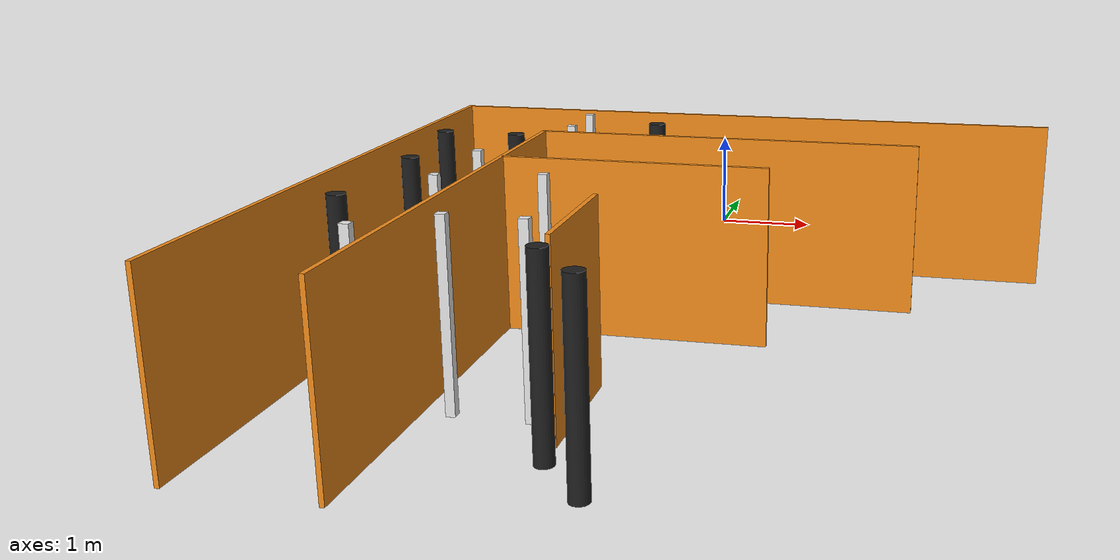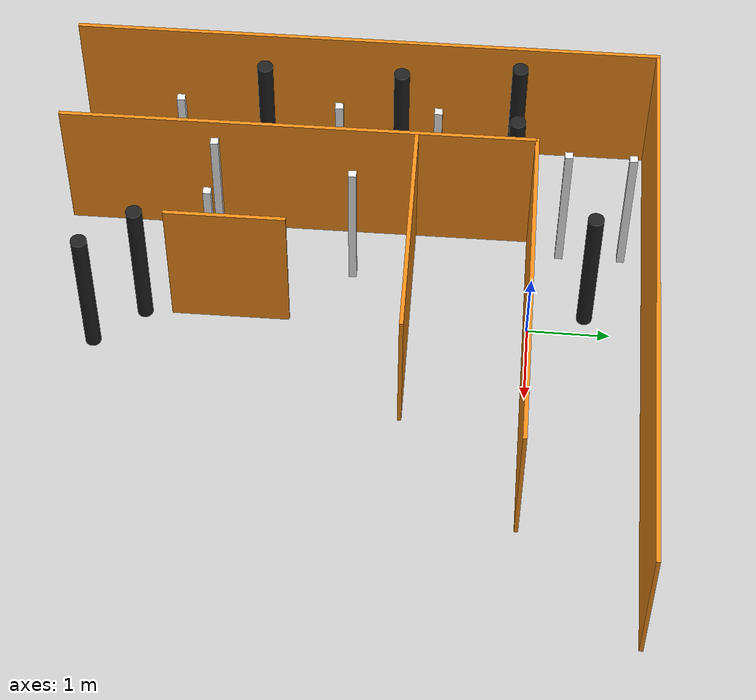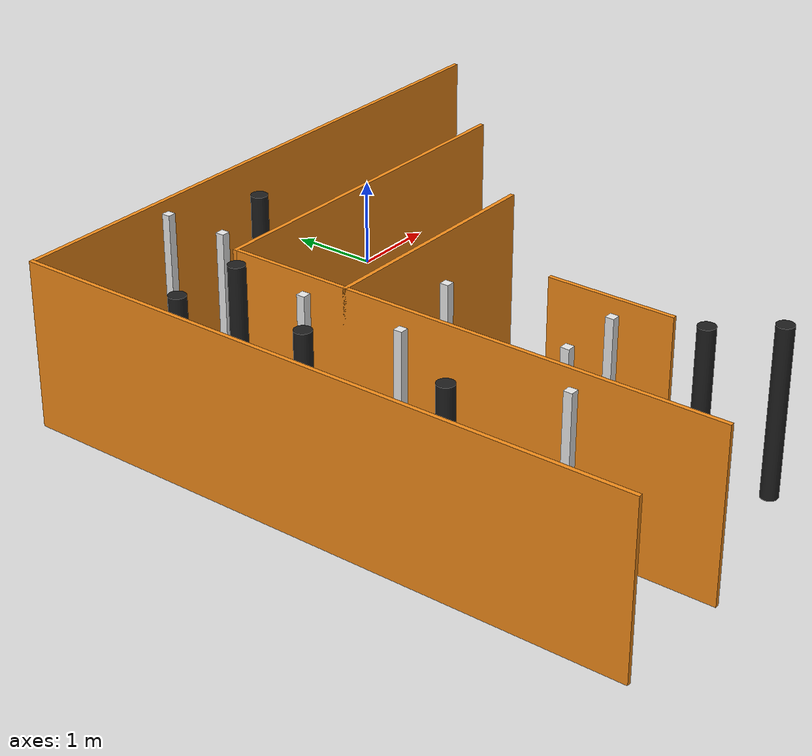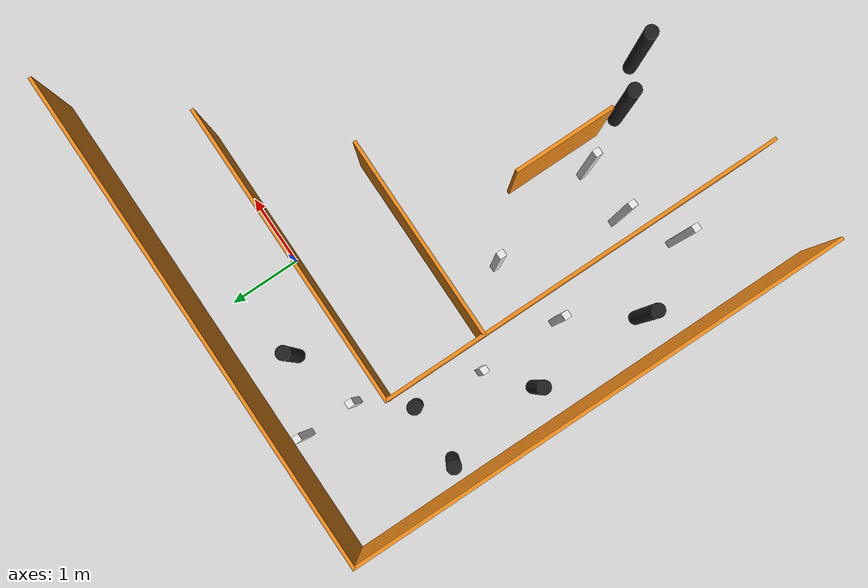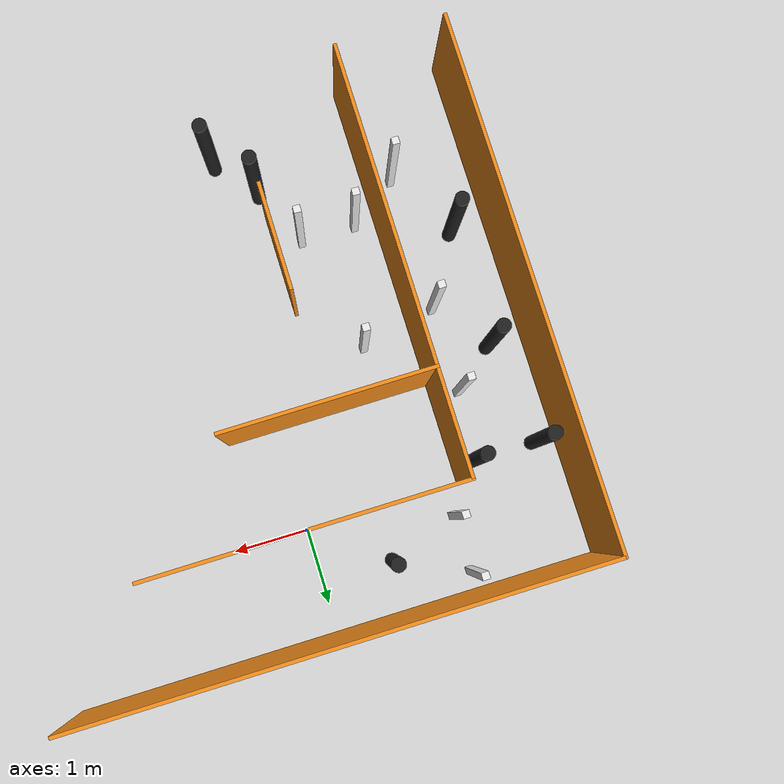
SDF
<sdf version="1.7">
 <model name="pesu_hackathon_arena_1">
  <link name="link_0">
   <visual name="visual">
    <geometry><box><size>4.5 0.05 2</size></box></geometry>
    <material>
     <lighting>1</lighting>
     <script><uri>file://media/materials/scripts/gazebo.material</uri><name>Gazebo/Orange</name></script>
     <shader type="pixel"/>
    </material>
   </visual>
   <collision name="collision">
    <geometry><box><size>4.5 0.05 2</size></box></geometry>
    <surface>
     <friction>
      <ode><mu>1</mu><mu2>1</mu2><fdir1>0 0 0</fdir1><slip1>0</slip1><slip2>0</slip2></ode>
      <torsional>
       <coefficient>1</coefficient>
       <patch_radius>0</patch_radius>
       <surface_radius>0</surface_radius>
       <use_patch_radius>1</use_patch_radius>
       <ode><slip>0</slip></ode>
      </torsional>
     </friction>
     <bounce><restitution_coefficient>0</restitution_coefficient><threshold>1e+06</threshold></bounce>
     <contact>
      <collide_without_contact>0</collide_without_contact>
      <collide_without_contact_bitmask>1</collide_without_contact_bitmask>
      <collide_bitmask>1</collide_bitmask>
      <ode>
       <soft_cfm>0</soft_cfm>
       <soft_erp>0.2</soft_erp>
       <kp>1e+13</kp>
       <kd>1</kd>
       <max_vel>0.01</max_vel>
       <min_depth>0</min_depth>
      </ode>
      <bullet>
       <split_impulse>1</split_impulse>
       <split_impulse_penetration_threshold>-0.01</split_impulse_penetration_threshold>
       <soft_cfm>0</soft_cfm>
       <soft_erp>0.2</soft_erp>
       <kp>1e+13</kp>
       <kd>1</kd>
      </bullet>
     </contact>
    </surface>
   </collision>
  </link>
  <link name="link_1">
   <pose>0 1.5 0 0 -0 0</pose>
   <visual name="visual">
    <geometry><box><size>7.5 0.05 2</size></box></geometry>
    <material>
     <lighting>1</lighting>
     <script><uri>file://media/materials/scripts/gazebo.material</uri><name>Gazebo/Orange</name></script>
     <shader type="pixel"/>
    </material>
   </visual>
   <collision name="collision">
    <geometry><box><size>7.5 0.05 2</size></box></geometry>
    <surface>
     <friction>
      <ode><mu>1</mu><mu2>1</mu2><fdir1>0 0 0</fdir1><slip1>0</slip1><slip2>0</slip2></ode>
      <torsional>
       <coefficient>1</coefficient>
       <patch_radius>0</patch_radius>
       <surface_radius>0</surface_radius>
       <use_patch_radius>1</use_patch_radius>
       <ode><slip>0</slip></ode>
      </torsional>
     </friction>
     <bounce><restitution_coefficient>0</restitution_coefficient><threshold>1e+06</threshold></bounce>
     <contact>
      <collide_without_contact>0</collide_without_contact>
      <collide_without_contact_bitmask>1</collide_without_contact_bitmask>
      <collide_bitmask>1</collide_bitmask>
      <ode>
       <soft_cfm>0</soft_cfm>
       <soft_erp>0.2</soft_erp>
       <kp>1e+13</kp>
       <kd>1</kd>
       <max_vel>0.01</max_vel>
       <min_depth>0</min_depth>
      </ode>
      <bullet>
       <split_impulse>1</split_impulse>
       <split_impulse_penetration_threshold>-0.01</split_impulse_penetration_threshold>
       <soft_cfm>0</soft_cfm>
       <soft_erp>0.2</soft_erp>
       <kp>1e+13</kp>
       <kd>1</kd>
      </bullet>
     </contact>
    </surface>
   </collision>
  </link>
  <link name="link_2">
   <pose>-2.225 -3 0 0 -0 0</pose>
   <visual name="visual">
    <geometry><box><size>0.05 6 2</size></box></geometry>
    <material>
     <lighting>1</lighting>
     <script><uri>file://media/materials/scripts/gazebo.material</uri><name>Gazebo/Orange</name></script>
     <shader type="pixel"/>
    </material>
   </visual>
   <collision name="collision">
    <geometry><box><size>0.05 6 2</size></box></geometry>
    <surface>
     <friction>
      <ode><mu>1</mu><mu2>1</mu2><fdir1>0 0 0</fdir1><slip1>0</slip1><slip2>0</slip2></ode>
      <torsional>
       <coefficient>1</coefficient>
       <patch_radius>0</patch_radius>
       <surface_radius>0</surface_radius>
       <use_patch_radius>1</use_patch_radius>
       <ode><slip>0</slip></ode>
      </torsional>
     </friction>
     <bounce><restitution_coefficient>0</restitution_coefficient><threshold>1e+06</threshold></bounce>
     <contact>
      <collide_without_contact>0</collide_without_contact>
      <collide_without_contact_bitmask>1</collide_without_contact_bitmask>
      <collide_bitmask>1</collide_bitmask>
      <ode>
       <soft_cfm>0</soft_cfm>
       <soft_erp>0.2</soft_erp>
       <kp>1e+13</kp>
       <kd>1</kd>
       <max_vel>0.01</max_vel>
       <min_depth>0</min_depth>
      </ode>
      <bullet>
       <split_impulse>1</split_impulse>
       <split_impulse_penetration_threshold>-0.01</split_impulse_penetration_threshold>
       <soft_cfm>0</soft_cfm>
       <soft_erp>0.2</soft_erp>
       <kp>1e+13</kp>
       <kd>1</kd>
      </bullet>
     </contact>
    </surface>
   </collision>
  </link>
  <link name="link_4">
   <pose>-3.75 -2.225 0 0 -0 0</pose>
   <visual name="visual">
    <geometry><box><size>0.05 7.5 2</size></box></geometry>
    <material>
     <lighting>1</lighting>
     <script><uri>file://media/materials/scripts/gazebo.material</uri><name>Gazebo/Orange</name></script>
     <shader type="pixel"/>
    </material>
   </visual>
   <collision name="collision">
    <geometry><box><size>0.05 7.5 2</size></box></geometry>
    <surface>
     <friction>
      <ode><mu>1</mu><mu2>1</mu2><fdir1>0 0 0</fdir1><slip1>0</slip1><slip2>0</slip2></ode>
      <torsional>
       <coefficient>1</coefficient>
       <patch_radius>0</patch_radius>
       <surface_radius>0</surface_radius>
       <use_patch_radius>1</use_patch_radius>
       <ode><slip>0</slip></ode>
      </torsional>
     </friction>
     <bounce><restitution_coefficient>0</restitution_coefficient><threshold>1e+06</threshold></bounce>
     <contact>
      <collide_without_contact>0</collide_without_contact>
      <collide_without_contact_bitmask>1</collide_without_contact_bitmask>
      <collide_bitmask>1</collide_bitmask>
      <ode>
       <soft_cfm>0</soft_cfm>
       <soft_erp>0.2</soft_erp>
       <kp>1e+13</kp>
       <kd>1</kd>
       <max_vel>0.01</max_vel>
       <min_depth>0</min_depth>
      </ode>
      <bullet>
       <split_impulse>1</split_impulse>
       <split_impulse_penetration_threshold>-0.01</split_impulse_penetration_threshold>
       <soft_cfm>0</soft_cfm>
       <soft_erp>0.2</soft_erp>
       <kp>1e+13</kp>
       <kd>1</kd>
      </bullet>
     </contact>
    </surface>
   </collision>
  </link>
  <link name="link_7">
   <pose>-0.75 -1.5 0 0 -0 0</pose>
   <visual name="visual">
    <geometry><box><size>3 0.05 2</size></box></geometry>
    <material>
     <lighting>1</lighting>
     <script><uri>file://media/materials/scripts/gazebo.material</uri><name>Gazebo/Orange</name></script>
     <shader type="pixel"/>
    </material>
   </visual>
   <collision name="collision">
    <geometry><box><size>3 0.05 2</size></box></geometry>
    <surface>
     <friction>
      <ode><mu>1</mu><mu2>1</mu2><fdir1>0 0 0</fdir1><slip1>0</slip1><slip2>0</slip2></ode>
      <torsional>
       <coefficient>1</coefficient>
       <patch_radius>0</patch_radius>
       <surface_radius>0</surface_radius>
       <use_patch_radius>1</use_patch_radius>
       <ode><slip>0</slip></ode>
      </torsional>
     </friction>
     <bounce><restitution_coefficient>0</restitution_coefficient><threshold>1e+06</threshold></bounce>
     <contact>
      <collide_without_contact>0</collide_without_contact>
      <collide_without_contact_bitmask>1</collide_without_contact_bitmask>
      <collide_bitmask>1</collide_bitmask>
      <ode>
       <soft_cfm>0</soft_cfm>
       <soft_erp>0.2</soft_erp>
       <kp>1e+13</kp>
       <kd>1</kd>
       <max_vel>0.01</max_vel>
       <min_depth>0</min_depth>
      </ode>
      <bullet>
       <split_impulse>1</split_impulse>
       <split_impulse_penetration_threshold>-0.01</split_impulse_penetration_threshold>
       <soft_cfm>0</soft_cfm>
       <soft_erp>0.2</soft_erp>
       <kp>1e+13</kp>
       <kd>1</kd>
      </bullet>
     </contact>
    </surface>
   </collision>
  </link>
  <link name="link_10">
   <pose>-0.725 -3.75 0 0 -0 0</pose>
   <visual name="visual">
    <geometry><box><size>0.05 1.5 2</size></box></geometry>
    <material>
     <lighting>1</lighting>
     <script><uri>file://media/materials/scripts/gazebo.material</uri><name>Gazebo/Orange</name></script>
     <shader type="pixel"/>
    </material>
   </visual>
   <collision name="collision">
    <geometry><box><size>0.05 1.5 2</size></box></geometry>
    <surface>
     <friction>
      <ode><mu>1</mu><mu2>1</mu2><fdir1>0 0 0</fdir1><slip1>0</slip1><slip2>0</slip2></ode>
      <torsional>
       <coefficient>1</coefficient>
       <patch_radius>0</patch_radius>
       <surface_radius>0</surface_radius>
       <use_patch_radius>1</use_patch_radius>
       <ode><slip>0</slip></ode>
      </torsional>
     </friction>
     <bounce><restitution_coefficient>0</restitution_coefficient><threshold>1e+06</threshold></bounce>
     <contact>
      <collide_without_contact>0</collide_without_contact>
      <collide_without_contact_bitmask>1</collide_without_contact_bitmask>
      <collide_bitmask>1</collide_bitmask>
      <ode>
       <soft_cfm>0</soft_cfm>
       <soft_erp>0.2</soft_erp>
       <kp>1e+13</kp>
       <kd>1</kd>
       <max_vel>0.01</max_vel>
       <min_depth>0</min_depth>
      </ode>
      <bullet>
       <split_impulse>1</split_impulse>
       <split_impulse_penetration_threshold>-0.01</split_impulse_penetration_threshold>
       <soft_cfm>0</soft_cfm>
       <soft_erp>0.2</soft_erp>
       <kp>1e+13</kp>
       <kd>1</kd>
      </bullet>
     </contact>
    </surface>
   </collision>
  </link>
  <link name="obstacle_2">
   <pose>-1.5 -2.25 0 0 -0 0</pose>
   <visual name="visual">
    <geometry><box><size>0.1 0.1 2</size></box></geometry>
    <material>
     <lighting>1</lighting>
     <script><uri>file://media/materials/scripts/gazebo.material</uri><name>Gazebo/White</name></script>
     <shader type="pixel"/>
    </material>
   </visual>
   <collision name="collision">
    <geometry><box><size>0.1 0.1 2</size></box></geometry>
    <surface>
     <friction>
      <ode><mu>1</mu><mu2>1</mu2><fdir1>0 0 0</fdir1><slip1>0</slip1><slip2>0</slip2></ode>
      <torsional>
       <coefficient>1</coefficient>
       <patch_radius>0</patch_radius>
       <surface_radius>0</surface_radius>
       <use_patch_radius>1</use_patch_radius>
       <ode><slip>0</slip></ode>
      </torsional>
     </friction>
     <bounce><restitution_coefficient>0</restitution_coefficient><threshold>1e+06</threshold></bounce>
     <contact>
      <collide_without_contact>0</collide_without_contact>
      <collide_without_contact_bitmask>1</collide_without_contact_bitmask>
      <collide_bitmask>1</collide_bitmask>
      <ode>
       <soft_cfm>0</soft_cfm>
       <soft_erp>0.2</soft_erp>
       <kp>1e+13</kp>
       <kd>1</kd>
       <max_vel>0.01</max_vel>
       <min_depth>0</min_depth>
      </ode>
      <bullet>
       <split_impulse>1</split_impulse>
       <split_impulse_penetration_threshold>-0.01</split_impulse_penetration_threshold>
       <soft_cfm>0</soft_cfm>
       <soft_erp>0.2</soft_erp>
       <kp>1e+13</kp>
       <kd>1</kd>
      </bullet>
     </contact>
    </surface>
   </collision>
  </link>
  <link name="obstacle_3">
   <pose>-1.1 -4 0 0 -0 0</pose>
   <visual name="visual">
    <geometry><box><size>0.1 0.1 2</size></box></geometry>
    <material>
     <lighting>1</lighting>
     <script><uri>file://media/materials/scripts/gazebo.material</uri><name>Gazebo/White</name></script>
     <shader type="pixel"/>
    </material>
   </visual>
   <collision name="collision">
    <geometry><box><size>0.1 0.1 2</size></box></geometry>
    <surface>
     <friction>
      <ode><mu>1</mu><mu2>1</mu2><fdir1>0 0 0</fdir1><slip1>0</slip1><slip2>0</slip2></ode>
      <torsional>
       <coefficient>1</coefficient>
       <patch_radius>0</patch_radius>
       <surface_radius>0</surface_radius>
       <use_patch_radius>1</use_patch_radius>
       <ode><slip>0</slip></ode>
      </torsional>
     </friction>
     <bounce><restitution_coefficient>0</restitution_coefficient><threshold>1e+06</threshold></bounce>
     <contact>
      <collide_without_contact>0</collide_without_contact>
      <collide_without_contact_bitmask>1</collide_without_contact_bitmask>
      <collide_bitmask>1</collide_bitmask>
      <ode>
       <soft_cfm>0</soft_cfm>
       <soft_erp>0.2</soft_erp>
       <kp>1e+13</kp>
       <kd>1</kd>
       <max_vel>0.01</max_vel>
       <min_depth>0</min_depth>
      </ode>
      <bullet>
       <split_impulse>1</split_impulse>
       <split_impulse_penetration_threshold>-0.01</split_impulse_penetration_threshold>
       <soft_cfm>0</soft_cfm>
       <soft_erp>0.2</soft_erp>
       <kp>1e+13</kp>
       <kd>1</kd>
      </bullet>
     </contact>
    </surface>
   </collision>
  </link>
  <link name="obstacle_4">
   <pose>-1.9 -4 0 0 -0 0</pose>
   <visual name="visual">
    <geometry><box><size>0.1 0.1 2</size></box></geometry>
    <material>
     <lighting>1</lighting>
     <script><uri>file://media/materials/scripts/gazebo.material</uri><name>Gazebo/White</name></script>
     <shader type="pixel"/>
    </material>
   </visual>
   <collision name="collision">
    <geometry><box><size>0.1 0.1 2</size></box></geometry>
    <surface>
     <friction>
      <ode><mu>1</mu><mu2>1</mu2><fdir1>0 0 0</fdir1><slip1>0</slip1><slip2>0</slip2></ode>
      <torsional>
       <coefficient>1</coefficient>
       <patch_radius>0</patch_radius>
       <surface_radius>0</surface_radius>
       <use_patch_radius>1</use_patch_radius>
       <ode><slip>0</slip></ode>
      </torsional>
     </friction>
     <bounce><restitution_coefficient>0</restitution_coefficient><threshold>1e+06</threshold></bounce>
     <contact>
      <collide_without_contact>0</collide_without_contact>
      <collide_without_contact_bitmask>1</collide_without_contact_bitmask>
      <collide_bitmask>1</collide_bitmask>
      <ode>
       <soft_cfm>0</soft_cfm>
       <soft_erp>0.2</soft_erp>
       <kp>1e+13</kp>
       <kd>1</kd>
       <max_vel>0.01</max_vel>
       <min_depth>0</min_depth>
      </ode>
      <bullet>
       <split_impulse>1</split_impulse>
       <split_impulse_penetration_threshold>-0.01</split_impulse_penetration_threshold>
       <soft_cfm>0</soft_cfm>
       <soft_erp>0.2</soft_erp>
       <kp>1e+13</kp>
       <kd>1</kd>
      </bullet>
     </contact>
    </surface>
   </collision>
  </link>
  <link name="obstacle_5">
   <pose>-0.7 -4.85 0 0 -0 0</pose>
   <visual name="visual">
    <geometry><cylinder><radius>0.1</radius><length>2</length></cylinder></geometry>
    <material>
     <lighting>1</lighting>
     <script><uri>file://media/materials/scripts/gazebo.material</uri><name>Gazebo/Black</name></script>
     <shader type="pixel"/>
    </material>
   </visual>
   <collision name="collision">
    <geometry><cylinder><radius>0.1</radius><length>2</length></cylinder></geometry>
    <surface>
     <friction>
      <ode><mu>1</mu><mu2>1</mu2><fdir1>0 0 0</fdir1><slip1>0</slip1><slip2>0</slip2></ode>
      <torsional>
       <coefficient>1</coefficient>
       <patch_radius>0</patch_radius>
       <surface_radius>0</surface_radius>
       <use_patch_radius>1</use_patch_radius>
       <ode><slip>0</slip></ode>
      </torsional>
     </friction>
     <bounce><restitution_coefficient>0</restitution_coefficient><threshold>1e+06</threshold></bounce>
     <contact>
      <collide_without_contact>0</collide_without_contact>
      <collide_without_contact_bitmask>1</collide_without_contact_bitmask>
      <collide_bitmask>1</collide_bitmask>
      <ode>
       <soft_cfm>0</soft_cfm>
       <soft_erp>0.2</soft_erp>
       <kp>1e+13</kp>
       <kd>1</kd>
       <max_vel>0.01</max_vel>
       <min_depth>0</min_depth>
      </ode>
      <bullet>
       <split_impulse>1</split_impulse>
       <split_impulse_penetration_threshold>-0.01</split_impulse_penetration_threshold>
       <soft_cfm>0</soft_cfm>
       <soft_erp>0.2</soft_erp>
       <kp>1e+13</kp>
       <kd>1</kd>
      </bullet>
     </contact>
    </surface>
   </collision>
  </link>
  <link name="obstacle_6">
   <pose>-0.2 -5.45 0 0 -0 0</pose>
   <visual name="visual">
    <geometry><cylinder><radius>0.1</radius><length>2</length></cylinder></geometry>
    <material>
     <lighting>1</lighting>
     <script><uri>file://media/materials/scripts/gazebo.material</uri><name>Gazebo/Black</name></script>
     <shader type="pixel"/>
    </material>
   </visual>
   <collision name="collision">
    <geometry><cylinder><radius>0.1</radius><length>2</length></cylinder></geometry>
    <surface>
     <friction>
      <ode><mu>1</mu><mu2>1</mu2><fdir1>0 0 0</fdir1><slip1>0</slip1><slip2>0</slip2></ode>
      <torsional>
       <coefficient>1</coefficient>
       <patch_radius>0</patch_radius>
       <surface_radius>0</surface_radius>
       <use_patch_radius>1</use_patch_radius>
       <ode><slip>0</slip></ode>
      </torsional>
     </friction>
     <bounce><restitution_coefficient>0</restitution_coefficient><threshold>1e+06</threshold></bounce>
     <contact>
      <collide_without_contact>0</collide_without_contact>
      <collide_without_contact_bitmask>1</collide_without_contact_bitmask>
      <collide_bitmask>1</collide_bitmask>
      <ode>
       <soft_cfm>0</soft_cfm>
       <soft_erp>0.2</soft_erp>
       <kp>1e+13</kp>
       <kd>1</kd>
       <max_vel>0.01</max_vel>
       <min_depth>0</min_depth>
      </ode>
      <bullet>
       <split_impulse>1</split_impulse>
       <split_impulse_penetration_threshold>-0.01</split_impulse_penetration_threshold>
       <soft_cfm>0</soft_cfm>
       <soft_erp>0.2</soft_erp>
       <kp>1e+13</kp>
       <kd>1</kd>
      </bullet>
     </contact>
    </surface>
   </collision>
  </link>
  <link name="obstacle_20">
   <pose>-1 0.75 0 0 -0 0</pose>
   <visual name="visual">
    <geometry><cylinder><radius>0.1</radius><length>2</length></cylinder></geometry>
    <material>
     <lighting>1</lighting>
     <script><uri>file://media/materials/scripts/gazebo.material</uri><name>Gazebo/Black</name></script>
     <shader type="pixel"/>
    </material>
   </visual>
   <collision name="collision">
    <geometry><cylinder><radius>0.1</radius><length>2</length></cylinder></geometry>
    <surface>
     <friction>
      <ode><mu>1</mu><mu2>1</mu2><fdir1>0 0 0</fdir1><slip1>0</slip1><slip2>0</slip2></ode>
      <torsional>
       <coefficient>1</coefficient>
       <patch_radius>0</patch_radius>
       <surface_radius>0</surface_radius>
       <use_patch_radius>1</use_patch_radius>
       <ode><slip>0</slip></ode>
      </torsional>
     </friction>
     <bounce><restitution_coefficient>0</restitution_coefficient><threshold>1e+06</threshold></bounce>
     <contact>
      <collide_without_contact>0</collide_without_contact>
      <collide_without_contact_bitmask>1</collide_without_contact_bitmask>
      <collide_bitmask>1</collide_bitmask>
      <ode>
       <soft_cfm>0</soft_cfm>
       <soft_erp>0.2</soft_erp>
       <kp>1e+13</kp>
       <kd>1</kd>
       <max_vel>0.01</max_vel>
       <min_depth>0</min_depth>
      </ode>
      <bullet>
       <split_impulse>1</split_impulse>
       <split_impulse_penetration_threshold>-0.01</split_impulse_penetration_threshold>
       <soft_cfm>0</soft_cfm>
       <soft_erp>0.2</soft_erp>
       <kp>1e+13</kp>
       <kd>1</kd>
      </bullet>
     </contact>
    </surface>
   </collision>
  </link>
  <link name="obstacle_21">
   <pose>-2 0.4 0 0 -0 0</pose>
   <visual name="visual">
    <geometry><box><size>0.1 0.1 2</size></box></geometry>
    <material>
     <lighting>1</lighting>
     <script><uri>file://media/materials/scripts/gazebo.material</uri><name>Gazebo/White</name></script>
     <shader type="pixel"/>
    </material>
   </visual>
   <collision name="collision">
    <geometry><box><size>0.1 0.1 2</size></box></geometry>
    <surface>
     <friction>
      <ode><mu>1</mu><mu2>1</mu2><fdir1>0 0 0</fdir1><slip1>0</slip1><slip2>0</slip2></ode>
      <torsional>
       <coefficient>1</coefficient>
       <patch_radius>0</patch_radius>
       <surface_radius>0</surface_radius>
       <use_patch_radius>1</use_patch_radius>
       <ode><slip>0</slip></ode>
      </torsional>
     </friction>
     <bounce><restitution_coefficient>0</restitution_coefficient><threshold>1e+06</threshold></bounce>
     <contact>
      <collide_without_contact>0</collide_without_contact>
      <collide_without_contact_bitmask>1</collide_without_contact_bitmask>
      <collide_bitmask>1</collide_bitmask>
      <ode>
       <soft_cfm>0</soft_cfm>
       <soft_erp>0.2</soft_erp>
       <kp>1e+13</kp>
       <kd>1</kd>
       <max_vel>0.01</max_vel>
       <min_depth>0</min_depth>
      </ode>
      <bullet>
       <split_impulse>1</split_impulse>
       <split_impulse_penetration_threshold>-0.01</split_impulse_penetration_threshold>
       <soft_cfm>0</soft_cfm>
       <soft_erp>0.2</soft_erp>
       <kp>1e+13</kp>
       <kd>1</kd>
      </bullet>
     </contact>
    </surface>
   </collision>
  </link>
  <link name="obstacle_22">
   <pose>-2 1.2 0 0 -0 0</pose>
   <visual name="visual">
    <geometry><box><size>0.1 0.1 2</size></box></geometry>
    <material>
     <lighting>1</lighting>
     <script><uri>file://media/materials/scripts/gazebo.material</uri><name>Gazebo/White</name></script>
     <shader type="pixel"/>
    </material>
   </visual>
   <collision name="collision">
    <geometry><box><size>0.1 0.1 2</size></box></geometry>
    <surface>
     <friction>
      <ode><mu>1</mu><mu2>1</mu2><fdir1>0 0 0</fdir1><slip1>0</slip1><slip2>0</slip2></ode>
      <torsional>
       <coefficient>1</coefficient>
       <patch_radius>0</patch_radius>
       <surface_radius>0</surface_radius>
       <use_patch_radius>1</use_patch_radius>
       <ode><slip>0</slip></ode>
      </torsional>
     </friction>
     <bounce><restitution_coefficient>0</restitution_coefficient><threshold>1e+06</threshold></bounce>
     <contact>
      <collide_without_contact>0</collide_without_contact>
      <collide_without_contact_bitmask>1</collide_without_contact_bitmask>
      <collide_bitmask>1</collide_bitmask>
      <ode>
       <soft_cfm>0</soft_cfm>
       <soft_erp>0.2</soft_erp>
       <kp>1e+13</kp>
       <kd>1</kd>
       <max_vel>0.01</max_vel>
       <min_depth>0</min_depth>
      </ode>
      <bullet>
       <split_impulse>1</split_impulse>
       <split_impulse_penetration_threshold>-0.01</split_impulse_penetration_threshold>
       <soft_cfm>0</soft_cfm>
       <soft_erp>0.2</soft_erp>
       <kp>1e+13</kp>
       <kd>1</kd>
      </bullet>
     </contact>
    </surface>
   </collision>
  </link>
  <link name="obstacle_23">
   <pose>-2.5 -0.25 0 0 -0 0</pose>
   <visual name="visual">
    <geometry><cylinder><radius>0.1</radius><length>2</length></cylinder></geometry>
    <material>
     <lighting>1</lighting>
     <script><uri>file://media/materials/scripts/gazebo.material</uri><name>Gazebo/Black</name></script>
     <shader type="pixel"/>
    </material>
   </visual>
   <collision name="collision">
    <geometry><cylinder><radius>0.1</radius><length>2</length></cylinder></geometry>
    <surface>
     <friction>
      <ode><mu>1</mu><mu2>1</mu2><fdir1>0 0 0</fdir1><slip1>0</slip1><slip2>0</slip2></ode>
      <torsional>
       <coefficient>1</coefficient>
       <patch_radius>0</patch_radius>
       <surface_radius>0</surface_radius>
       <use_patch_radius>1</use_patch_radius>
       <ode><slip>0</slip></ode>
      </torsional>
     </friction>
     <bounce><restitution_coefficient>0</restitution_coefficient><threshold>1e+06</threshold></bounce>
     <contact>
      <collide_without_contact>0</collide_without_contact>
      <collide_without_contact_bitmask>1</collide_without_contact_bitmask>
      <collide_bitmask>1</collide_bitmask>
      <ode>
       <soft_cfm>0</soft_cfm>
       <soft_erp>0.2</soft_erp>
       <kp>1e+13</kp>
       <kd>1</kd>
       <max_vel>0.01</max_vel>
       <min_depth>0</min_depth>
      </ode>
      <bullet>
       <split_impulse>1</split_impulse>
       <split_impulse_penetration_threshold>-0.01</split_impulse_penetration_threshold>
       <soft_cfm>0</soft_cfm>
       <soft_erp>0.2</soft_erp>
       <kp>1e+13</kp>
       <kd>1</kd>
      </bullet>
     </contact>
    </surface>
   </collision>
  </link>
  <link name="obstacle_24">
   <pose>-3.4 -0.25 0 0 -0 0</pose>
   <visual name="visual">
    <geometry><cylinder><radius>0.1</radius><length>2</length></cylinder></geometry>
    <material>
     <lighting>1</lighting>
     <script><uri>file://media/materials/scripts/gazebo.material</uri><name>Gazebo/Black</name></script>
     <shader type="pixel"/>
    </material>
   </visual>
   <collision name="collision">
    <geometry><cylinder><radius>0.1</radius><length>2</length></cylinder></geometry>
    <surface>
     <friction>
      <ode><mu>1</mu><mu2>1</mu2><fdir1>0 0 0</fdir1><slip1>0</slip1><slip2>0</slip2></ode>
      <torsional>
       <coefficient>1</coefficient>
       <patch_radius>0</patch_radius>
       <surface_radius>0</surface_radius>
       <use_patch_radius>1</use_patch_radius>
       <ode><slip>0</slip></ode>
      </torsional>
     </friction>
     <bounce><restitution_coefficient>0</restitution_coefficient><threshold>1e+06</threshold></bounce>
     <contact>
      <collide_without_contact>0</collide_without_contact>
      <collide_without_contact_bitmask>1</collide_without_contact_bitmask>
      <collide_bitmask>1</collide_bitmask>
      <ode>
       <soft_cfm>0</soft_cfm>
       <soft_erp>0.2</soft_erp>
       <kp>1e+13</kp>
       <kd>1</kd>
       <max_vel>0.01</max_vel>
       <min_depth>0</min_depth>
      </ode>
      <bullet>
       <split_impulse>1</split_impulse>
       <split_impulse_penetration_threshold>-0.01</split_impulse_penetration_threshold>
       <soft_cfm>0</soft_cfm>
       <soft_erp>0.2</soft_erp>
       <kp>1e+13</kp>
       <kd>1</kd>
      </bullet>
     </contact>
    </surface>
   </collision>
  </link>
  <link name="obstacle_25">
   <pose>-2.6 -1.25 0 0 -0 0</pose>
   <visual name="visual">
    <geometry><box><size>0.1 0.1 2</size></box></geometry>
    <material>
     <lighting>1</lighting>
     <script><uri>file://media/materials/scripts/gazebo.material</uri><name>Gazebo/White</name></script>
     <shader type="pixel"/>
    </material>
   </visual>
   <collision name="collision">
    <geometry><box><size>0.1 0.1 2</size></box></geometry>
    <surface>
     <friction>
      <ode><mu>1</mu><mu2>1</mu2><fdir1>0 0 0</fdir1><slip1>0</slip1><slip2>0</slip2></ode>
      <torsional>
       <coefficient>1</coefficient>
       <patch_radius>0</patch_radius>
       <surface_radius>0</surface_radius>
       <use_patch_radius>1</use_patch_radius>
       <ode><slip>0</slip></ode>
      </torsional>
     </friction>
     <bounce><restitution_coefficient>0</restitution_coefficient><threshold>1e+06</threshold></bounce>
     <contact>
      <collide_without_contact>0</collide_without_contact>
      <collide_without_contact_bitmask>1</collide_without_contact_bitmask>
      <collide_bitmask>1</collide_bitmask>
      <ode>
       <soft_cfm>0</soft_cfm>
       <soft_erp>0.2</soft_erp>
       <kp>1e+13</kp>
       <kd>1</kd>
       <max_vel>0.01</max_vel>
       <min_depth>0</min_depth>
      </ode>
      <bullet>
       <split_impulse>1</split_impulse>
       <split_impulse_penetration_threshold>-0.01</split_impulse_penetration_threshold>
       <soft_cfm>0</soft_cfm>
       <soft_erp>0.2</soft_erp>
       <kp>1e+13</kp>
       <kd>1</kd>
      </bullet>
     </contact>
    </surface>
   </collision>
  </link>
  <link name="obstacle_26">
   <pose>-3.2 -1.75 0 0 -0 0</pose>
   <visual name="visual">
    <geometry><cylinder><radius>0.1</radius><length>2</length></cylinder></geometry>
    <material>
     <lighting>1</lighting>
     <script><uri>file://media/materials/scripts/gazebo.material</uri><name>Gazebo/Black</name></script>
     <shader type="pixel"/>
    </material>
   </visual>
   <collision name="collision">
    <geometry><cylinder><radius>0.1</radius><length>2</length></cylinder></geometry>
    <surface>
     <friction>
      <ode><mu>1</mu><mu2>1</mu2><fdir1>0 0 0</fdir1><slip1>0</slip1><slip2>0</slip2></ode>
      <torsional>
       <coefficient>1</coefficient>
       <patch_radius>0</patch_radius>
       <surface_radius>0</surface_radius>
       <use_patch_radius>1</use_patch_radius>
       <ode><slip>0</slip></ode>
      </torsional>
     </friction>
     <bounce><restitution_coefficient>0</restitution_coefficient><threshold>1e+06</threshold></bounce>
     <contact>
      <collide_without_contact>0</collide_without_contact>
      <collide_without_contact_bitmask>1</collide_without_contact_bitmask>
      <collide_bitmask>1</collide_bitmask>
      <ode>
       <soft_cfm>0</soft_cfm>
       <soft_erp>0.2</soft_erp>
       <kp>1e+13</kp>
       <kd>1</kd>
       <max_vel>0.01</max_vel>
       <min_depth>0</min_depth>
      </ode>
      <bullet>
       <split_impulse>1</split_impulse>
       <split_impulse_penetration_threshold>-0.01</split_impulse_penetration_threshold>
       <soft_cfm>0</soft_cfm>
       <soft_erp>0.2</soft_erp>
       <kp>1e+13</kp>
       <kd>1</kd>
      </bullet>
     </contact>
    </surface>
   </collision>
  </link>
  <link name="obstacle_27">
   <pose>-2.6 -2.5 0 0 -0 0</pose>
   <visual name="visual">
    <geometry><box><size>0.1 0.1 2</size></box></geometry>
    <material>
     <lighting>1</lighting>
     <script><uri>file://media/materials/scripts/gazebo.material</uri><name>Gazebo/White</name></script>
     <shader type="pixel"/>
    </material>
   </visual>
   <collision name="collision">
    <geometry><box><size>0.1 0.1 2</size></box></geometry>
    <surface>
     <friction>
      <ode><mu>1</mu><mu2>1</mu2><fdir1>0 0 0</fdir1><slip1>0</slip1><slip2>0</slip2></ode>
      <torsional>
       <coefficient>1</coefficient>
       <patch_radius>0</patch_radius>
       <surface_radius>0</surface_radius>
       <use_patch_radius>1</use_patch_radius>
       <ode><slip>0</slip></ode>
      </torsional>
     </friction>
     <bounce><restitution_coefficient>0</restitution_coefficient><threshold>1e+06</threshold></bounce>
     <contact>
      <collide_without_contact>0</collide_without_contact>
      <collide_without_contact_bitmask>1</collide_without_contact_bitmask>
      <collide_bitmask>1</collide_bitmask>
      <ode>
       <soft_cfm>0</soft_cfm>
       <soft_erp>0.2</soft_erp>
       <kp>1e+13</kp>
       <kd>1</kd>
       <max_vel>0.01</max_vel>
       <min_depth>0</min_depth>
      </ode>
      <bullet>
       <split_impulse>1</split_impulse>
       <split_impulse_penetration_threshold>-0.01</split_impulse_penetration_threshold>
       <soft_cfm>0</soft_cfm>
       <soft_erp>0.2</soft_erp>
       <kp>1e+13</kp>
       <kd>1</kd>
      </bullet>
     </contact>
    </surface>
   </collision>
  </link>
  <link name="obstacle_28">
   <pose>-3.2 -3.5 0 0 -0 0</pose>
   <visual name="visual">
    <geometry><cylinder><radius>0.1</radius><length>2</length></cylinder></geometry>
    <material>
     <lighting>1</lighting>
     <script><uri>file://media/materials/scripts/gazebo.material</uri><name>Gazebo/Black</name></script>
     <shader type="pixel"/>
    </material>
   </visual>
   <collision name="collision">
    <geometry><cylinder><radius>0.1</radius><length>2</length></cylinder></geometry>
    <surface>
     <friction>
      <ode><mu>1</mu><mu2>1</mu2><fdir1>0 0 0</fdir1><slip1>0</slip1><slip2>0</slip2></ode>
      <torsional>
       <coefficient>1</coefficient>
       <patch_radius>0</patch_radius>
       <surface_radius>0</surface_radius>
       <use_patch_radius>1</use_patch_radius>
       <ode><slip>0</slip></ode>
      </torsional>
     </friction>
     <bounce><restitution_coefficient>0</restitution_coefficient><threshold>1e+06</threshold></bounce>
     <contact>
      <collide_without_contact>0</collide_without_contact>
      <collide_without_contact_bitmask>1</collide_without_contact_bitmask>
      <collide_bitmask>1</collide_bitmask>
      <ode>
       <soft_cfm>0</soft_cfm>
       <soft_erp>0.2</soft_erp>
       <kp>1e+13</kp>
       <kd>1</kd>
       <max_vel>0.01</max_vel>
       <min_depth>0</min_depth>
      </ode>
      <bullet>
       <split_impulse>1</split_impulse>
       <split_impulse_penetration_threshold>-0.01</split_impulse_penetration_threshold>
       <soft_cfm>0</soft_cfm>
       <soft_erp>0.2</soft_erp>
       <kp>1e+13</kp>
       <kd>1</kd>
      </bullet>
     </contact>
    </surface>
   </collision>
  </link>
  <link name="obstacle_29">
   <pose>-2.6 -4.5 0 0 -0 0</pose>
   <visual name="visual">
    <geometry><box><size>0.1 0.1 2</size></box></geometry>
    <material>
     <lighting>1</lighting>
     <script><uri>file://media/materials/scripts/gazebo.material</uri><name>Gazebo/White</name></script>
     <shader type="pixel"/>
    </material>
   </visual>
   <collision name="collision">
    <geometry><box><size>0.1 0.1 2</size></box></geometry>
    <surface>
     <friction>
      <ode><mu>1</mu><mu2>1</mu2><fdir1>0 0 0</fdir1><slip1>0</slip1><slip2>0</slip2></ode>
      <torsional>
       <coefficient>1</coefficient>
       <patch_radius>0</patch_radius>
       <surface_radius>0</surface_radius>
       <use_patch_radius>1</use_patch_radius>
       <ode><slip>0</slip></ode>
      </torsional>
     </friction>
     <bounce><restitution_coefficient>0</restitution_coefficient><threshold>1e+06</threshold></bounce>
     <contact>
      <collide_without_contact>0</collide_without_contact>
      <collide_without_contact_bitmask>1</collide_without_contact_bitmask>
      <collide_bitmask>1</collide_bitmask>
      <ode>
       <soft_cfm>0</soft_cfm>
       <soft_erp>0.2</soft_erp>
       <kp>1e+13</kp>
       <kd>1</kd>
       <max_vel>0.01</max_vel>
       <min_depth>0</min_depth>
      </ode>
      <bullet>
       <split_impulse>1</split_impulse>
       <split_impulse_penetration_threshold>-0.01</split_impulse_penetration_threshold>
       <soft_cfm>0</soft_cfm>
       <soft_erp>0.2</soft_erp>
       <kp>1e+13</kp>
       <kd>1</kd>
      </bullet>
     </contact>
    </surface>
   </collision>
  </link>
  <static>1</static>
 </model>
</sdf>
